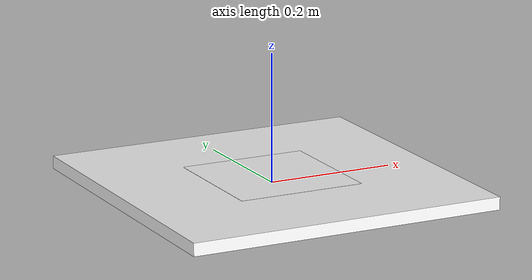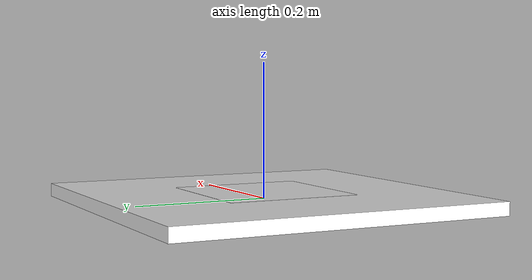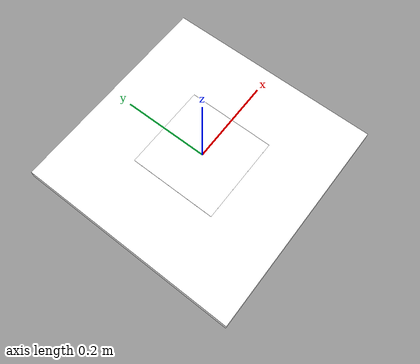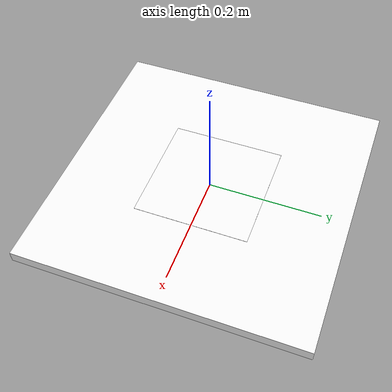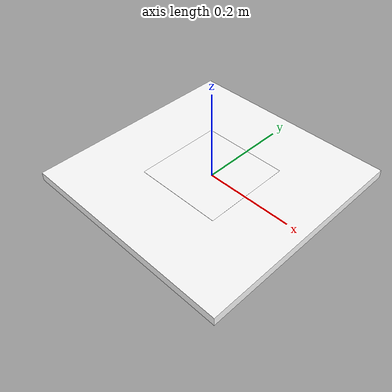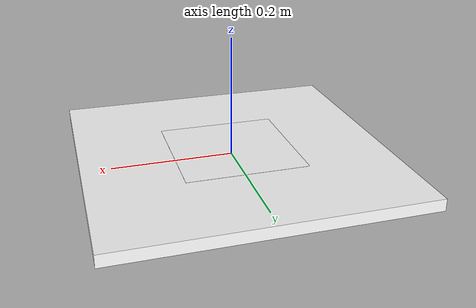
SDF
<?xml version="1.0" encoding="UTF-8"?>
<sdf version='1.8'>
  <model name='aruco_platform'>
    <link name="platform_base_link">
      <collision name="platform_collision">
        <geometry>
          <box>
            <size>0.5 0.5 0.02</size>
          </box>
        </geometry>
      </collision>
      <visual name="platform_visual">
        <geometry>
          <box>
            <size>0.5 0.5 0.02</size>
          </box>
        </geometry>
        <material>
          <diffuse>1 1 1 1</diffuse>
          <specular>0.4 0.4 0.4 1</specular>
        </material>
      </visual>
    </link>
    <link name='aruco_link'>
      <pose>0 0 0.011 0 0 0</pose>
      <visual name='aruco_visual'>
        <geometry>
          <plane>
            <normal>0 0 1</normal>
            <size>0.2 0.2</size>
          </plane>
        </geometry>
        <material>
          <diffuse>1 1 1 1</diffuse>
          <specular>0.4 0.4 0.4 1</specular>
          <pbr>
            <metal>
              <albedo_map>model://ros_gz_example_description/models/aruco_platform/materials/textures/aruco_6x6_64.png</albedo_map>
            </metal>
          </pbr>
        </material>
      </visual>
    </link>
    <joint name="aruco_joint" type="fixed">
      <parent>platform_base_link</parent>
      <child>aruco_link</child>
    </joint>
  </model>
</sdf>
